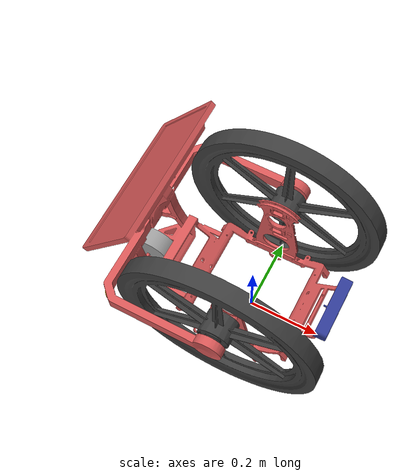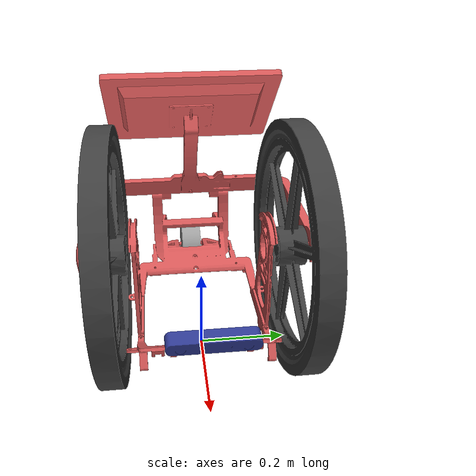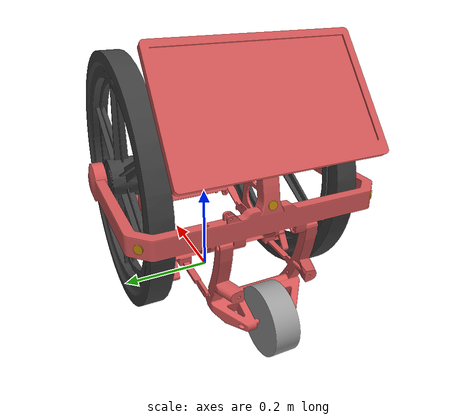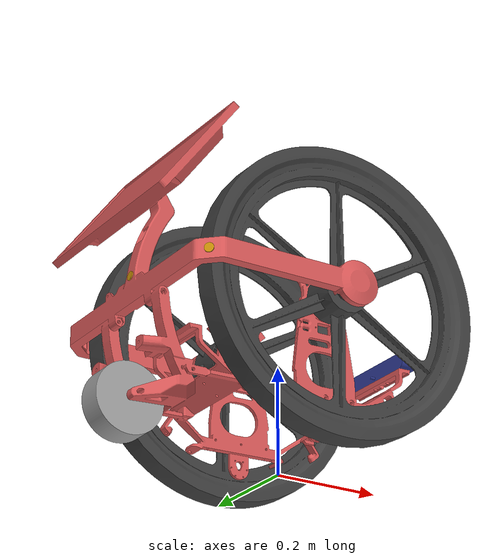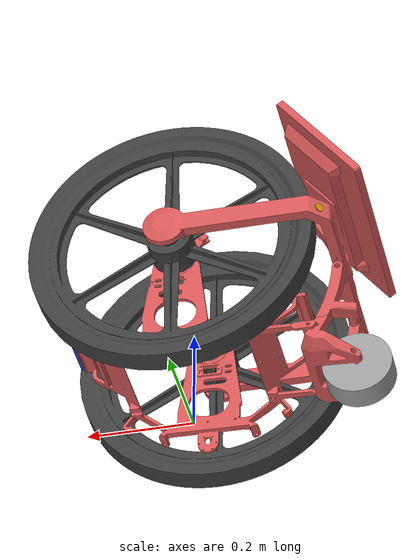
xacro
<?xml version="1.0" ?>
<robot name="adasa" xmlns:xacro="http://www.ros.org/wiki/xacro">

<xacro:include filename="$(find adasa_description)/urdf/materials.xacro" />
<xacro:include filename="$(find adasa_description)/urdf/adasa.gazebo" />
<xacro:include filename="$(find adasa_description)/urdf/adasa.trans" />
<xacro:macro name="box_inertia" params="m w h d">
    <inertial>
      <origin xyz="0.0003135266393176628 -1.062322295417484e-06 0.014372758300766675" rpy="${pi/2} 0 ${pi/2}"/>
      <mass value="${m}"/>
      <inertia ixx="${(m/12) * (h*h + d*d)}" ixy="0.0" ixz="0.0" iyy="${(m/12) * (w*w + d*d)}" iyz="0.0" izz="${(m/12) * (w*w + h*h)}"/>
    </inertial>
  </xacro:macro>

<link name="base_link">
  <inertial>
    <origin xyz="-0.2438617822696889 -0.0007259855361472208 0.3870042255868824" rpy="0 0 0"/>
    <mass value="25.062575144811834"/>
    <inertia ixx="0.938773" iyy="0.706478" izz="0.550345" ixy="-3e-05" iyz="-0.000104" ixz="0.041484"/>
  </inertial>
  <visual>
    <origin xyz="0 0 0" rpy="0 0 0"/>
    <geometry>
      <mesh filename="file://$(find adasa_description)/meshes/base_link.stl" scale="0.001 0.001 0.001"/>
    </geometry>
    <material name="aluminum_anodized_glossy_red"/>
  </visual>
  <collision>
    <origin xyz="0 0 0" rpy="0 0 0"/>
    <geometry>
      <mesh filename="file://$(find adasa_description)/meshes/base_link.stl" scale="0.001 0.001 0.001"/>
    </geometry>
  </collision>
</link>

<link name="right_wheel_1">
  <inertial>
    <origin xyz="-1.490119134334709e-07 -0.038991143757016955 -1.604491565254662e-05" rpy="0 0 0"/>
    <mass value="28.85566496898562"/>
    <inertia ixx="0.78734" iyy="1.566029" izz="0.787172" ixy="8e-06" iyz="-0.0" ixz="0.0"/>
  </inertial>
  <visual>
    <origin xyz="-0.000292 -0.227164 -0.270081" rpy="0 0 0"/>
    <geometry>
      <mesh filename="file://$(find adasa_description)/meshes/right_wheel_1.stl" scale="0.001 0.001 0.001"/>
    </geometry>
    <material name="pa_12_nylon_pa_603cf_with_eos_p_3d_printers"/>
  </visual>
  <collision>
    <origin xyz="-0.000292 -0.227164 -0.270081" rpy="0 0 0"/>
    <geometry>
      <mesh filename="file://$(find adasa_description)/meshes/right_wheel_1.stl" scale="0.001 0.001 0.001"/>
    </geometry>
  </collision>
</link>

<link name="left_wheel_1">
  <inertial>
    <origin xyz="-2.0628517688914706e-07 0.03899084773136638 -1.602928055072228e-05" rpy="0 0 0"/>
    <mass value="28.85566507173454"/>
    <inertia ixx="0.78734" iyy="1.566029" izz="0.787172" ixy="8e-06" iyz="0.0" ixz="-0.0"/>
  </inertial>
  <visual>
    <origin xyz="-0.000292 0.228567 -0.270081" rpy="0 0 0"/>
    <geometry>
      <mesh filename="file://$(find adasa_description)/meshes/left_wheel_1.stl" scale="0.001 0.001 0.001"/>
    </geometry>
    <material name="pa_12_nylon_pa_603cf_with_eos_p_3d_printers"/>
  </visual>
  <collision>
    <origin xyz="-0.000292 0.228567 -0.270081" rpy="0 0 0"/>
    <geometry>
      <mesh filename="file://$(find adasa_description)/meshes/left_wheel_1.stl" scale="0.001 0.001 0.001"/>
    </geometry>
  </collision>
</link>

<link name="sonar_left_1">
  <inertial>
    <origin xyz="-4.4674660839572056e-05 0.0013468915109928203 0.008604642924829042" rpy="0 0 0"/>
    <mass value="0.0035755151099839755"/>
    <inertia ixx="0.0" iyy="0.0" izz="0.0" ixy="-0.0" iyz="0.0" ixz="-0.0"/>
  </inertial>
  <visual>
    <origin xyz="0.285011 -0.233995 -0.26223" rpy="0 0 0"/>
    <geometry>
      <mesh filename="file://$(find adasa_description)/meshes/sonar_left_1.stl" scale="0.001 0.001 0.001"/>
    </geometry>
    <material name="polymide_kapton"/>
  </visual>
  <collision>
    <origin xyz="0.285011 -0.233995 -0.26223" rpy="0 0 0"/>
    <geometry>
      <mesh filename="file://$(find adasa_description)/meshes/sonar_left_1.stl" scale="0.001 0.001 0.001"/>
    </geometry>
  </collision>
</link>

<link name="sonar_right_1">
  <inertial>
    <origin xyz="-0.0013079086172544385 -8.357182224108528e-05 0.008593705583429478" rpy="0 0 0"/>
    <mass value="0.0035755151099840067"/>
    <inertia ixx="0.0" iyy="0.0" izz="0.0" ixy="0.0" iyz="-0.0" ixz="-0.0"/>
  </inertial>
  <visual>
    <origin xyz="0.283731 0.236678 -0.262227" rpy="0 0 0"/>
    <geometry>
      <mesh filename="file://$(find adasa_description)/meshes/sonar_right_1.stl" scale="0.001 0.001 0.001"/>
    </geometry>
    <material name="polymide_kapton"/>
  </visual>
  <collision>
    <origin xyz="0.283731 0.236678 -0.262227" rpy="0 0 0"/>
    <geometry>
      <mesh filename="file://$(find adasa_description)/meshes/sonar_right_1.stl" scale="0.001 0.001 0.001"/>
    </geometry>
  </collision>
</link>

<link name="sonar_back_1">
  <inertial>
    <origin xyz="-0.001974140925595058 2.666130880848831e-05 -0.008526941895357076" rpy="0 0 0"/>
    <mass value="0.0035755151099840067"/>
    <inertia ixx="0.0" iyy="0.0" izz="0.0" ixy="-0.0" iyz="0.0" ixz="-0.0"/>
  </inertial>
  <visual>
    <origin xyz="0.299675 0.000701 -0.314591" rpy="0 0 0"/>
    <geometry>
      <mesh filename="file://$(find adasa_description)/meshes/sonar_back_1.stl" scale="0.001 0.001 0.001"/>
    </geometry>
    <material name="polymide_kapton"/>
  </visual>
  <collision>
    <origin xyz="0.299675 0.000701 -0.314591" rpy="0 0 0"/>
    <geometry>
      <mesh filename="file://$(find adasa_description)/meshes/sonar_back_1.stl" scale="0.001 0.001 0.001"/>
    </geometry>
  </collision>
</link>

<link name="zed2_1">
  <inertial>
    <origin xyz="0.0003135266393176628 -1.062322295417484e-06 0.014372758300766675" rpy="0 0 0"/>
    <mass value="1.195261039361359"/>
    <inertia ixx="0.002923" iyy="0.000179" izz="0.002942" ixy="0.0" iyz="-0.0" ixz="-0.0"/>
  </inertial>
  <visual>
    <origin xyz="-0.222912 0.000701 -0.218212" rpy="0 0 0"/>
    <geometry>
      <mesh filename="file://$(find adasa_description)/meshes/zed2_1.stl" scale="0.001 0.001 0.001"/>
    </geometry>
    <material name="paint_enamel_glossy_blue"/>
  </visual>
  <collision>
    <origin xyz="-0.222912 0.000701 -0.218212" rpy="0 0 0"/>
    <geometry>
      <mesh filename="file://$(find adasa_description)/meshes/zed2_1.stl" scale="0.001 0.001 0.001"/>
    </geometry>
  </collision>
</link>

<link name="zed2_imu"/>

<link name="zed2_depth_frame"/>

<link name="omniwheel_1">
  <inertial>
    <origin xyz="4.853849584485204e-07 -4.859916064519449e-07 -3.933592674365549e-07" rpy="0 0 0"/>
    <mass value="5.209742367356124"/>
    <inertia ixx="0.006588" iyy="0.011006" izz="0.006588" ixy="0.0" iyz="-0.0" ixz="0.0"/>
  </inertial>
  <visual>
    <origin xyz="0.309604 0.000701 -0.07248" rpy="0 0 0"/>
    <geometry>
      <mesh filename="file://$(find adasa_description)/meshes/omniwheel_1.stl" scale="0.001 0.001 0.001"/>
    </geometry>
    <material name="steel_satin"/>
  </visual>
  <collision>
    <origin xyz="0.309604 0.000701 -0.07248" rpy="0 0 0"/>
    <geometry>
      <mesh filename="file://$(find adasa_description)/meshes/omniwheel_1.stl" scale="0.001 0.001 0.001"/>
    </geometry>
  </collision>
</link>

<joint name="right_wheel_joint" type="continuous">
  <origin xyz="0.000292 0.227164 0.270081" rpy="0 0 0"/>
  <parent link="base_link"/>
  <child link="right_wheel_1"/>
  <axis xyz="0.0 1.0 0.0"/>
</joint>

<joint name="left_wheel_joint" type="continuous">
  <origin xyz="0.000292 -0.228567 0.270081" rpy="0 0 0"/>
  <parent link="base_link"/>
  <child link="left_wheel_1"/>
  <axis xyz="0.0 1.0 0.0"/>
</joint>

<joint name="left_sonar_joint" type="fixed">
  <origin xyz="-0.285011 0.233995 0.26223" rpy="0 0 0"/>
  <parent link="base_link"/>
  <child link="sonar_left_1"/>
</joint>

<joint name="right_sonar_joint" type="fixed">
  <origin xyz="-0.283731 -0.236678 0.262227" rpy="0 0 0"/>
  <parent link="base_link"/>
  <child link="sonar_right_1"/>
</joint>

<joint name="back_sonar_joint" type="fixed">
  <origin xyz="-0.299675 -0.000701 0.314591" rpy="0 0 0"/>
  <parent link="base_link"/>
  <child link="sonar_back_1"/>
</joint>

<joint name="zed2_joint" type="fixed">
  <origin xyz="0.222912 -0.000701 0.218212" rpy="0 0 0"/>
  <parent link="base_link"/>
  <child link="zed2_1"/>
</joint>

<joint name="zed2_imu_joint" type="fixed">
  <origin xyz="0 0 0" rpy="0 0 0"/>
  <parent link="zed2_1"/>
  <child link="zed2_imu"/>
</joint>

<joint name="zed2_depth_joint" type="fixed">
  <origin xyz="0 0 0" rpy="${-pi/2} 0 ${-pi/2}"/>
  <parent link="zed2_1"/>
  <child link="zed2_depth_frame"/>
</joint>

<joint name="omni_joint" type="continuous">
  <origin xyz="-0.309604 -0.000701 0.07248" rpy="0 0 0"/>
  <parent link="base_link"/>
  <child link="omniwheel_1"/>
  <axis xyz="-0.0 -1.0 -0.0"/>
</joint>

</robot>

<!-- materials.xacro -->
<robot name="adasa" xmlns:xacro="http://www.ros.org/wiki/xacro" >

<material name="silver_default">
  <color rgba="0.700 0.700 0.700 1.000"/>
</material>
<material name="aluminum_anodized_glossy_red">
  <color rgba="0.8549019607843137 0.34901960784313724 0.34901960784313724 1.0"/>
</material>
<material name="pa_12_nylon_pa_603cf_with_eos_p_3d_printers">
  <color rgba="0.24705882352941178 0.24705882352941178 0.24705882352941178 1.0"/>
</material>
<material name="aluminum_anodized_glossy_grey">
  <color rgba="0.5372549019607843 0.5372549019607843 0.5372549019607843 1.0"/>
</material>
<material name="polymide_kapton">
  <color rgba="0.7843137254901961 0.5568627450980392 0.027450980392156862 1.0"/>
</material>
<material name="steel_satin">
  <color rgba="0.6274509803921569 0.6274509803921569 0.6274509803921569 1.0"/>
</material>
<material name="paint_enamel_glossy_blue">
  <color rgba="0.18823529411764706 0.23137254901960785 0.5882352941176471 0.0"/>
</material>
</robot>

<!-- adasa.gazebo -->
<robot name="adasa" xmlns:xacro="http://www.ros.org/wiki/xacro" >

<xacro:property name="body_color" value="Gazebo/Silver" />
<xacro:property name="red" value="Gazebo/Red" />
<xacro:property name="grey" value="Gazebo/Grey" />
<xacro:property name="yellow" value="Gazebo/Yellow" />
<xacro:property name="blue" value="Gazebo/Blue" />

<gazebo>
  <plugin name="control" filename="libgazebo_ros_control.so"/>
</gazebo>
<gazebo reference="base_link">
  <material>${red}</material>
  <mu1>0.0</mu1>
  <mu2>0.0</mu2>
  <selfCollide>true</selfCollide>
  <gravity>true</gravity>
</gazebo>

<gazebo reference="right_wheel_1">
  <material>${grey}</material>
  <mu1>0.5</mu1>
  <mu2>0.5</mu2>
  <selfCollide>true</selfCollide>
</gazebo>

<gazebo reference="left_wheel_1">
  <material>${grey}</material>
  <mu1>0.5</mu1>
  <mu2>0.5</mu2>
  <selfCollide>true</selfCollide>
</gazebo>

<gazebo reference="sonar_left_1">
  <material>${yellow}</material>
  <mu1>0.2</mu1>
  <mu2>0.2</mu2>
  <selfCollide>true</selfCollide>
</gazebo>

<gazebo reference="sonar_right_1">
  <material>${yellow}</material>
  <mu1>0.2</mu1>
  <mu2>0.2</mu2>
  <selfCollide>true</selfCollide>
</gazebo>

<gazebo reference="sonar_back_1">
  <material>${yellow}</material>
  <mu1>0.2</mu1>
  <mu2>0.2</mu2>
  <selfCollide>true</selfCollide>
</gazebo>

<gazebo reference="zed2_1">
  <material>${blue}</material>
  <mu1>0.2</mu1>
  <mu2>0.2</mu2>
  <selfCollide>true</selfCollide>
</gazebo>

<gazebo reference="omniwheel_1">
  <material>${grey}</material>
  <mu1>0.0</mu1>
  <mu2>0.0</mu2>
  <selfCollide>true</selfCollide>
</gazebo>

<gazebo>
  <plugin name="control" filename="libgazebo_ros_control.so"/>
</gazebo>

<!--Gazebo Differential Drive Plugin-->
<gazebo>
  <plugin name="gazebo_ros_diff_drive" filename="libgazebo_ros_diff_drive.so">
      <update_rate>100</update_rate>

      <left_joint>right_wheel_joint</left_joint>
      <right_joint>left_wheel_joint</right_joint>

      <wheel_separation>0.37526</wheel_separation>
      <wheel_diameter>0.533019</wheel_diameter>

      <max_wheel_torque>20</max_wheel_torque>
      <max_wheel_acceleration>1.0</max_wheel_acceleration>

      <command_topic>cmd_vel</command_topic>

      <publish_odom>true</publish_odom>
      <publish_odom_tf>true</publish_odom_tf>
      <publish_wheel_tf>true</publish_wheel_tf>

      <odometry_topic>odom</odometry_topic>
      <odometry_frame>odom</odometry_frame>
      <robot_base_frame>base_link</robot_base_frame>

    </plugin>
</gazebo>

<gazebo reference="zed2_imu">
  <sensor name="imu_sensor" type="imu">
   <plugin filename="libgazebo_ros_imu_sensor.so" name="imu_plugin">
      <ros>
        <remapping>~/out:=imu</remapping>
      </ros>
      <initial_orientation_as_reference>true</initial_orientation_as_reference>
    </plugin>
    <always_on>true</always_on>
    <update_rate>100</update_rate>
    <visualize>true</visualize>
    <imu>
      <angular_velocity>
        <x>
          <noise type="gaussian">
            <mean>0.0</mean>
            <stddev>2e-4</stddev>
            <bias_mean>0.0000075</bias_mean>
            <bias_stddev>0.0000008</bias_stddev>
          </noise>
        </x>
        <y>
          <noise type="gaussian">
            <mean>0.0</mean>
            <stddev>2e-4</stddev>
            <bias_mean>0.0000075</bias_mean>
            <bias_stddev>0.0000008</bias_stddev>
          </noise>
        </y>
        <z>
          <noise type="gaussian">
            <mean>0.0</mean>
            <stddev>2e-4</stddev>
            <bias_mean>0.0000075</bias_mean>
            <bias_stddev>0.0000008</bias_stddev>
          </noise>
        </z>
      </angular_velocity>
      <linear_acceleration>
        <x>
          <noise type="gaussian">
            <mean>0.0</mean>
            <stddev>1.7e-2</stddev>
            <bias_mean>0.1</bias_mean>
            <bias_stddev>0.001</bias_stddev>
          </noise>
        </x>
        <y>
          <noise type="gaussian">
            <mean>0.0</mean>
            <stddev>1.7e-2</stddev>
            <bias_mean>0.1</bias_mean>
            <bias_stddev>0.001</bias_stddev>
          </noise>
        </y>
        <z>
          <noise type="gaussian">
            <mean>0.0</mean>
            <stddev>1.7e-2</stddev>
            <bias_mean>0.1</bias_mean>
            <bias_stddev>0.001</bias_stddev>
          </noise>
        </z>
      </linear_acceleration>
    </imu>
  </sensor>
</gazebo>

<gazebo reference="zed2_1">
  <sensor name="depth_camera" type="depth">
    <visualize>true</visualize>
    <update_rate>30.0</update_rate>
    <camera name="camera">
      <horizontal_fov>1.91986</horizontal_fov>
      <vertical_fov>1.22173</vertical_fov>
      <image>
      <!-- actual value by 4 for performance reasons -->
        <width>540</width>
        <height>270</height>
        <format>R8G8B8</format>
      </image>
      <clip>
        <near>0.05</near>
        <far>3</far>
      </clip>
    </camera>
    <plugin name="depth_camera_controller" filename="libgazebo_ros_camera.so">
      <baseline>0.12</baseline>
      <alwaysOn>true</alwaysOn>
      <updateRate>0.0</updateRate>
      <frame_name>zed2_depth_frame</frame_name>
      <pointCloudCutoff>0.2</pointCloudCutoff>
      <pointCloudCutoffMax>20.0</pointCloudCutoffMax>
      <distortionK1>0</distortionK1>
      <distortionK2>0</distortionK2>
      <distortionK3>0</distortionK3>
      <distortionT1>0</distortionT1>
      <distortionT2>0</distortionT2>
      <CxPrime>0</CxPrime>
      <Cx>0</Cx>
      <Cy>0</Cy>
      <focalLength>0</focalLength>
      <hackBaseline>0</hackBaseline>
    </plugin>
  </sensor>
</gazebo>

</robot>
